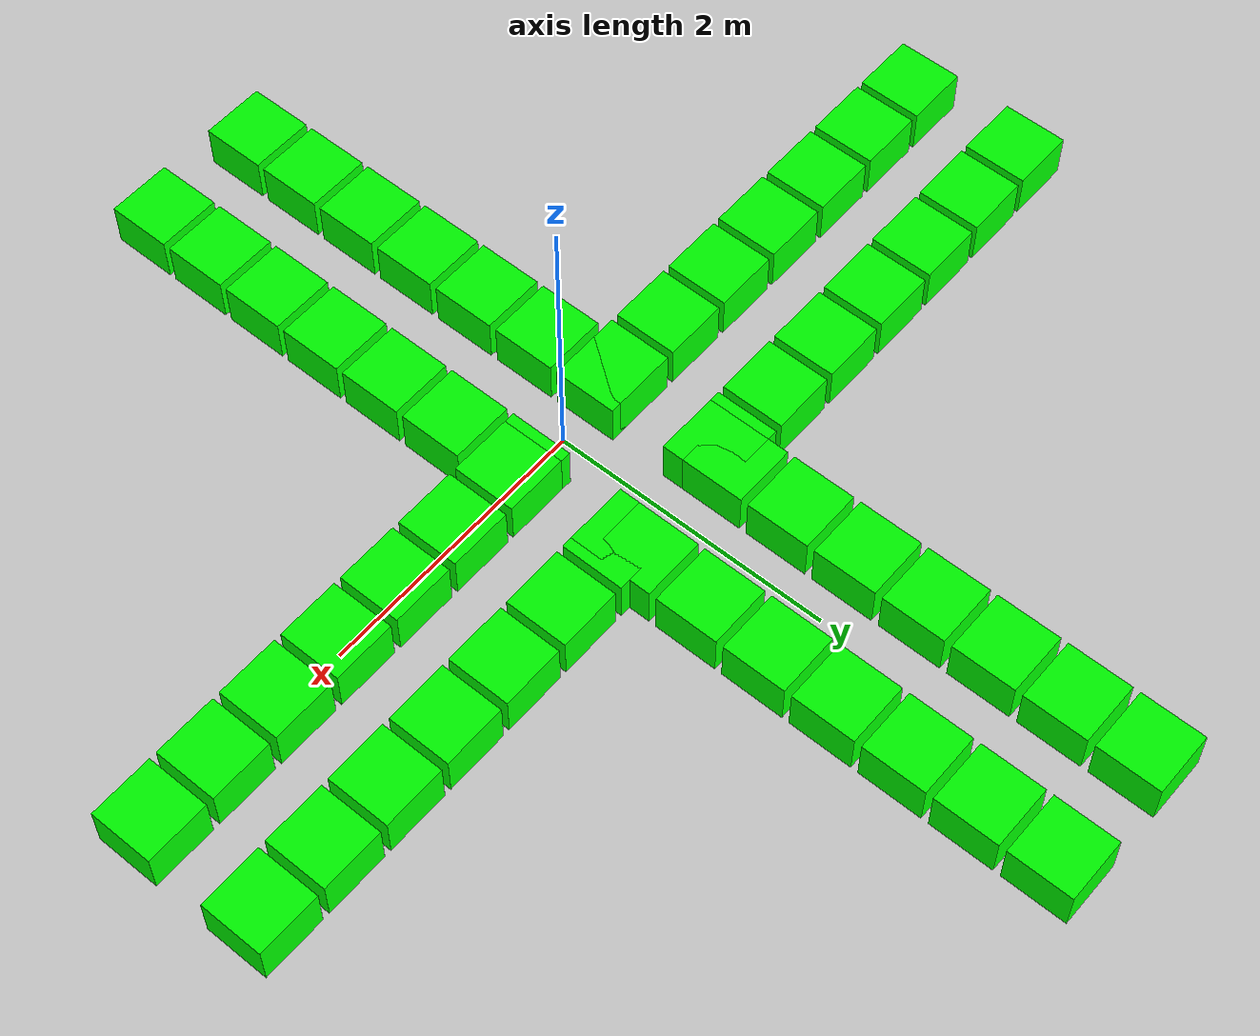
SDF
<?xml version="1.0" ?>

<sdf version="1.6">
  <world name="default">

    <include>
      <uri>model://sun</uri>
    </include>
    <include>
      <uri>model://ground_plane</uri>
    </include>

    <!-- Box Obstacle 1 -->
    <model name="box_obstacle1">
      <static>true</static>
      <pose>1.0 0 0 0 0 0</pose> <!-- Set the pose (position and orientation) of the box -->
      <link name="link">
        <collision name="collision">
          <geometry>
            <box>
              <size>0.45 0.45 0.6</size> <!-- Set the size of the box -->
            </box>
          </geometry>
        </collision>
        <visual name="visual">
          <geometry>
            <box>
              <size>0.45 0.45 0.6</size> <!-- Set the size of the box -->
            </box>
          </geometry>
          <material>
            <ambient>0 1 0 1</ambient> <!-- Set the ambient color to green (RGBA) -->
            <diffuse>0 1 0 1</diffuse> <!-- Set the diffuse color to green (RGBA) -->
            <specular>0.7 0.7 0.7 1</specular> <!-- Set the specular color to light gray (RGBA) -->
            <emissive>0 0 0 1</emissive> <!-- Set the emissive color to black (RGBA) -->
          </material>
        </visual>
      </link>
    </model>

    <!-- Box Obstacle 2 -->
    <model name="box_obstacle2">
      <static>true</static>
      <pose>1.5 0 0 0 0 0</pose> <!-- Set the pose (position and orientation) of the box -->
      <link name="link">
        <collision name="collision">
          <geometry>
            <box>
              <size>0.45 0.45 0.6</size> <!-- Set the size of the box -->
            </box>
          </geometry>
        </collision>
        <visual name="visual">
          <geometry>
            <box>
              <size>0.45 0.45 0.6</size> <!-- Set the size of the box -->
            </box>
          </geometry>
          <material>
            <ambient>0 1 0 1</ambient> <!-- Set the ambient color to green (RGBA) -->
            <diffuse>0 1 0 1</diffuse> <!-- Set the diffuse color to green (RGBA) -->
            <specular>0.7 0.7 0.7 1</specular> <!-- Set the specular color to light gray (RGBA) -->
            <emissive>0 0 0 1</emissive> <!-- Set the emissive color to black (RGBA) -->
          </material>
        </visual>
      </link>
    </model>

    <!-- Box Obstacle 3 -->
    <model name="box_obstacle3">
      <static>true</static>
      <pose>2 0 0 0 0 0</pose> <!-- Set the pose (position and orientation) of the box -->
      <link name="link">
        <collision name="collision">
          <geometry>
            <box>
              <size>0.45 0.45 0.6</size> <!-- Set the size of the box -->
            </box>
          </geometry>
        </collision>
        <visual name="visual">
          <geometry>
            <box>
              <size>0.45 0.45 0.6</size> <!-- Set the size of the box -->
            </box>
          </geometry>
          <material>
            <ambient>0 1 0 1</ambient> <!-- Set the ambient color to green (RGBA) -->
            <diffuse>0 1 0 1</diffuse> <!-- Set the diffuse color to green (RGBA) -->
            <specular>0.7 0.7 0.7 1</specular> <!-- Set the specular color to light gray (RGBA) -->
            <emissive>0 0 0 1</emissive> <!-- Set the emissive color to black (RGBA) -->
          </material>
        </visual>
      </link>
    </model>

    <!-- Box Obstacle 4 -->
    <model name="box_obstacle4">
      <static>true</static>
      <pose>1 0.85 0 0 0 0</pose> <!-- Set the pose (position and orientation) of the box -->
      <link name="link">
        <collision name="collision">
          <geometry>
            <box>
              <size>0.45 0.45 0.6</size> <!-- Set the size of the box -->
            </box>
          </geometry>
        </collision>
        <visual name="visual">
          <geometry>
            <box>
              <size>0.45 0.45 0.6</size> <!-- Set the size of the box -->
            </box>
          </geometry>
          <material>
            <ambient>0 1 0 1</ambient> <!-- Set the ambient color to green (RGBA) -->
            <diffuse>0 1 0 1</diffuse> <!-- Set the diffuse color to green (RGBA) -->
            <specular>0.7 0.7 0.7 1</specular> <!-- Set the specular color to light gray (RGBA) -->
            <emissive>0 0 0 1</emissive> <!-- Set the emissive color to black (RGBA) -->
          </material>
        </visual>
      </link>
    </model>

    <!-- Box Obstacle 5 -->
    <model name="box_obstacle5">
      <static>true</static>
      <pose>1.5 0.85 0 0 0 0</pose> <!-- Set the pose (position and orientation) of the box -->
      <link name="link">
        <collision name="collision">
          <geometry>
            <box>
              <size>0.45 0.45 0.6</size> <!-- Set the size of the box -->
            </box>
          </geometry>
        </collision>
        <visual name="visual">
          <geometry>
            <box>
              <size>0.45 0.45 0.6</size> <!-- Set the size of the box -->
            </box>
          </geometry>
          <material>
            <ambient>0 1 0 1</ambient> <!-- Set the ambient color to green (RGBA) -->
            <diffuse>0 1 0 1</diffuse> <!-- Set the diffuse color to green (RGBA) -->
            <specular>0.7 0.7 0.7 1</specular> <!-- Set the specular color to light gray (RGBA) -->
            <emissive>0 0 0 1</emissive> <!-- Set the emissive color to black (RGBA) -->
          </material>
        </visual>
      </link>
    </model>

    <!-- Box Obstacle 6 -->
    <model name="box_obstacle6">
      <static>true</static>
      <pose>2 0.85 0 0 0 0</pose> <!-- Set the pose (position and orientation) of the box -->
      <link name="link">
        <collision name="collision">
          <geometry>
            <box>
              <size>0.45 0.45 0.6</size> <!-- Set the size of the box -->
            </box>
          </geometry>
        </collision>
        <visual name="visual">
          <geometry>
            <box>
              <size>0.45 0.45 0.6</size> <!-- Set the size of the box -->
            </box>
          </geometry>
          <material>
            <ambient>0 1 0 1</ambient> <!-- Set the ambient color to green (RGBA) -->
            <diffuse>0 1 0 1</diffuse> <!-- Set the diffuse color to green (RGBA) -->
            <specular>0.7 0.7 0.7 1</specular> <!-- Set the specular color to light gray (RGBA) -->
            <emissive>0 0 0 1</emissive> <!-- Set the emissive color to black (RGBA) -->
          </material>
        </visual>
      </link>
    </model>

    <!-- Box Obstacle 7 -->
    <model name="box_obstacle7">
      <static>true</static>
      <pose>-2 0 0 0 0 0</pose> <!-- Set the pose (position and orientation) of the box -->
      <link name="link">
        <collision name="collision">
          <geometry>
            <box>
              <size>0.45 0.45 0.6</size> <!-- Set the size of the box -->
            </box>
          </geometry>
        </collision>
        <visual name="visual">
          <geometry>
            <box>
              <size>0.45 0.45 0.6</size> <!-- Set the size of the box -->
            </box>
          </geometry>
          <material>
            <ambient>0 1 0 1</ambient> <!-- Set the ambient color to green (RGBA) -->
            <diffuse>0 1 0 1</diffuse> <!-- Set the diffuse color to green (RGBA) -->
            <specular>0.7 0.7 0.7 1</specular> <!-- Set the specular color to light gray (RGBA) -->
            <emissive>0 0 0 1</emissive> <!-- Set the emissive color to black (RGBA) -->
          </material>
        </visual>
      </link>
    </model>

    <!-- Box Obstacle 8 -->
    <model name="box_obstacle8">
      <static>true</static>
      <pose>-1.5  0 0 0 0 0</pose> <!-- Set the pose (position and orientation) of the box -->
      <link name="link">
        <collision name="collision">
          <geometry>
            <box>
              <size>0.45 0.45 0.6</size> <!-- Set the size of the box -->
            </box>
          </geometry>
        </collision>
        <visual name="visual">
          <geometry>
            <box>
              <size>0.45 0.45 0.6</size> <!-- Set the size of the box -->
            </box>
          </geometry>
          <material>
            <ambient>0 1 0 1</ambient> <!-- Set the ambient color to green (RGBA) -->
            <diffuse>0 1 0 1</diffuse> <!-- Set the diffuse color to green (RGBA) -->
            <specular>0.7 0.7 0.7 1</specular> <!-- Set the specular color to light gray (RGBA) -->
            <emissive>0 0 0 1</emissive> <!-- Set the emissive color to black (RGBA) -->
          </material>
        </visual>
      </link>
    </model>

    <!-- Box Obstacle 9 -->
    <model name="box_obstacle9">
      <static>true</static>
      <pose>0.425 -0.5 0 0 0 0</pose> <!-- Set the pose (position and orientation) of the box -->
      <link name="link">
        <collision name="collision">
          <geometry>
            <box>
              <size>0.45 0.45 0.6</size> <!-- Set the size of the box -->
            </box>
          </geometry>
        </collision>
        <visual name="visual">
          <geometry>
            <box>
              <size>0.45 0.45 0.6</size> <!-- Set the size of the box -->
            </box>
          </geometry>
          <material>
            <ambient>0 1 0 1</ambient> <!-- Set the ambient color to green (RGBA) -->
            <diffuse>0 1 0 1</diffuse> <!-- Set the diffuse color to green (RGBA) -->
            <specular>0.7 0.7 0.7 1</specular> <!-- Set the specular color to light gray (RGBA) -->
            <emissive>0 0 0 1</emissive> <!-- Set the emissive color to black (RGBA) -->
          </material>
        </visual>
      </link>
    </model>

    <!-- Box Obstacle 10 -->
    <model name="box_obstacle10">
      <static>true</static>
      <pose> 0.425 -1 0 0 0 0</pose> <!-- Set the pose (position and orientation) of the box -->
      <link name="link">
        <collision name="collision">
          <geometry>
            <box>
              <size>0.45 0.45 0.6</size> <!-- Set the size of the box -->
            </box>
          </geometry>
        </collision>
        <visual name="visual">
          <geometry>
            <box>
              <size>0.45 0.45 0.6</size> <!-- Set the size of the box -->
            </box>
          </geometry>
          <material>
            <ambient>0 1 0 1</ambient> <!-- Set the ambient color to green (RGBA) -->
            <diffuse>0 1 0 1</diffuse> <!-- Set the diffuse color to green (RGBA) -->
            <specular>0.7 0.7 0.7 1</specular> <!-- Set the specular color to light gray (RGBA) -->
            <emissive>0 0 0 1</emissive> <!-- Set the emissive color to black (RGBA) -->
          </material>
        </visual>
      </link>
    </model>

    <!-- Box Obstacle 11 -->
    <model name="box_obstacle11">
      <static>true</static>
      <pose> 0.425 -1.5 0 0 0 0</pose> <!-- Set the pose (position and orientation) of the box -->
      <link name="link">
        <collision name="collision">
          <geometry>
            <box>
              <size>0.45 0.45 0.6</size> <!-- Set the size of the box -->
            </box>
          </geometry>
        </collision>
        <visual name="visual">
          <geometry>
            <box>
              <size>0.45 0.45 0.6</size> <!-- Set the size of the box -->
            </box>
          </geometry>
          <material>
            <ambient>0 1 0 1</ambient> <!-- Set the ambient color to green (RGBA) -->
            <diffuse>0 1 0 1</diffuse> <!-- Set the diffuse color to green (RGBA) -->
            <specular>0.7 0.7 0.7 1</specular> <!-- Set the specular color to light gray (RGBA) -->
            <emissive>0 0 0 1</emissive> <!-- Set the emissive color to black (RGBA) -->
          </material>
        </visual>
      </link>
    </model>

    <!-- Box Obstacle 12 -->
    <model name="box_obstacle12">
      <static>true</static>
      <pose> -0.425 -0.5 0 0 0 0</pose> <!-- Set the pose (position and orientation) of the box -->
      <link name="link">
        <collision name="collision">
          <geometry>
            <box>
              <size>0.45 0.45 0.6</size> <!-- Set the size of the box -->
            </box>
          </geometry>
        </collision>
        <visual name="visual">
          <geometry>
            <box>
              <size>0.45 0.45 0.6</size> <!-- Set the size of the box -->
            </box>
          </geometry>
          <material>
            <ambient>0 1 0 1</ambient> <!-- Set the ambient color to green (RGBA) -->
            <diffuse>0 1 0 1</diffuse> <!-- Set the diffuse color to green (RGBA) -->
            <specular>0.7 0.7 0.7 1</specular> <!-- Set the specular color to light gray (RGBA) -->
            <emissive>0 0 0 1</emissive> <!-- Set the emissive color to black (RGBA) -->
          </material>
        </visual>
      </link>
    </model>

    <!-- Box Obstacle 13 -->
    <model name="box_obstacle13">
      <static>true</static>
      <pose> -0.425 -1 0 0 0 0</pose> <!-- Set the pose (position and orientation) of the box -->
      <link name="link">
        <collision name="collision">
          <geometry>
            <box>
              <size>0.45 0.45 0.6</size> <!-- Set the size of the box -->
            </box>
          </geometry>
        </collision>
        <visual name="visual">
          <geometry>
            <box>
              <size>0.45 0.45 0.6</size> <!-- Set the size of the box -->
            </box>
          </geometry>
          <material>
            <ambient>0 1 0 1</ambient> <!-- Set the ambient color to green (RGBA) -->
            <diffuse>0 1 0 1</diffuse> <!-- Set the diffuse color to green (RGBA) -->
            <specular>0.7 0.7 0.7 1</specular> <!-- Set the specular color to light gray (RGBA) -->
            <emissive>0 0 0 1</emissive> <!-- Set the emissive color to black (RGBA) -->
          </material>
        </visual>
      </link>
    </model>

    <!-- Box Obstacle 14 -->
    <model name="box_obstacle14">
      <static>true</static>
      <pose> -0.425 -1.5 0 0 0 0</pose> <!-- Set the pose (position and orientation) of the box -->
      <link name="link">
        <collision name="collision">
          <geometry>
            <box>
              <size>0.45 0.45 0.6</size> <!-- Set the size of the box -->
            </box>
          </geometry>
        </collision>
        <visual name="visual">
          <geometry>
            <box>
              <size>0.45 0.45 0.6</size> <!-- Set the size of the box -->
            </box>
          </geometry>
          <material>
            <ambient>0 1 0 1</ambient> <!-- Set the ambient color to green (RGBA) -->
            <diffuse>0 1 0 1</diffuse> <!-- Set the diffuse color to green (RGBA) -->
            <specular>0.7 0.7 0.7 1</specular> <!-- Set the specular color to light gray (RGBA) -->
            <emissive>0 0 0 1</emissive> <!-- Set the emissive color to black (RGBA) -->
          </material>
        </visual>
      </link>
    </model>

    <!-- Box Obstacle 15 -->
    <model name="box_obstacle15">
      <static>true</static>
      <pose> 0.425 0 0 0 0 0</pose> <!-- Set the pose (position and orientation) of the box -->
      <link name="link">
        <collision name="collision">
          <geometry>
            <box>
              <size>0.45 0.45 0.6</size> <!-- Set the size of the box -->
            </box>
          </geometry>
        </collision>
        <visual name="visual">
          <geometry>
            <box>
              <size>0.45 0.45 0.6</size> <!-- Set the size of the box -->
            </box>
          </geometry>
          <material>
            <ambient>0 1 0 1</ambient> <!-- Set the ambient color to green (RGBA) -->
            <diffuse>0 1 0 1</diffuse> <!-- Set the diffuse color to green (RGBA) -->
            <specular>0.7 0.7 0.7 1</specular> <!-- Set the specular color to light gray (RGBA) -->
            <emissive>0 0 0 1</emissive> <!-- Set the emissive color to black (RGBA) -->
          </material>
        </visual>
      </link>
    </model>

    <!-- Box Obstacle 16 -->
    <model name="box_obstacle16">
      <static>true</static>
      <pose> 0.425 0.85 0 0 0 0</pose> <!-- Set the pose (position and orientation) of the box -->
      <link name="link">
        <collision name="collision">
          <geometry>
            <box>
              <size>0.45 0.45 0.6</size> <!-- Set the size of the box -->
            </box>
          </geometry>
        </collision>
        <visual name="visual">
          <geometry>
            <box>
              <size>0.45 0.45 0.6</size> <!-- Set the size of the box -->
            </box>
          </geometry>
          <material>
            <ambient>0 1 0 1</ambient> <!-- Set the ambient color to green (RGBA) -->
            <diffuse>0 1 0 1</diffuse> <!-- Set the diffuse color to green (RGBA) -->
            <specular>0.7 0.7 0.7 1</specular> <!-- Set the specular color to light gray (RGBA) -->
            <emissive>0 0 0 1</emissive> <!-- Set the emissive color to black (RGBA) -->
          </material>
        </visual>
      </link>
    </model>

    <!-- Box Obstacle 17 -->
    <model name="box_obstacle17">
      <static>true</static>
      <pose> 0.425 1.5 0 0 0 0</pose> <!-- Set the pose (position and orientation) of the box -->
      <link name="link">
        <collision name="collision">
          <geometry>
            <box>
              <size>0.45 0.45 0.6</size> <!-- Set the size of the box -->
            </box>
          </geometry>
        </collision>
        <visual name="visual">
          <geometry>
            <box>
              <size>0.45 0.45 0.6</size> <!-- Set the size of the box -->
            </box>
          </geometry>
          <material>
            <ambient>0 1 0 1</ambient> <!-- Set the ambient color to green (RGBA) -->
            <diffuse>0 1 0 1</diffuse> <!-- Set the diffuse color to green (RGBA) -->
            <specular>0.7 0.7 0.7 1</specular> <!-- Set the specular color to light gray (RGBA) -->
            <emissive>0 0 0 1</emissive> <!-- Set the emissive color to black (RGBA) -->
          </material>
        </visual>
      </link>
    </model>

    <!-- Box Obstacle 18 -->
    <model name="box_obstacle18">
      <static>true</static>
      <pose> -0.425 1.5 0 0 0 0</pose> <!-- Set the pose (position and orientation) of the box -->
      <link name="link">
        <collision name="collision">
          <geometry>
            <box>
              <size>0.45 0.45 0.6</size> <!-- Set the size of the box -->
            </box>
          </geometry>
        </collision>
        <visual name="visual">
          <geometry>
            <box>
              <size>0.45 0.45 0.6</size> <!-- Set the size of the box -->
            </box>
          </geometry>
          <material>
            <ambient>0 1 0 1</ambient> <!-- Set the ambient color to green (RGBA) -->
            <diffuse>0 1 0 1</diffuse> <!-- Set the diffuse color to green (RGBA) -->
            <specular>0.7 0.7 0.7 1</specular> <!-- Set the specular color to light gray (RGBA) -->
            <emissive>0 0 0 1</emissive> <!-- Set the emissive color to black (RGBA) -->
          </material>
        </visual>
      </link>
    </model>

    <!-- Box Obstacle 19 -->
    <model name="box_obstacle19">
      <static>true</static>
      <pose> -0.425 0.85 0 0 0 0</pose> <!-- Set the pose (position and orientation) of the box -->
      <link name="link">
        <collision name="collision">
          <geometry>
            <box>
              <size>0.45 0.45 0.6</size> <!-- Set the size of the box -->
            </box>
          </geometry>
        </collision>
        <visual name="visual">
          <geometry>
            <box>
              <size>0.45 0.45 0.6</size> <!-- Set the size of the box -->
            </box>
          </geometry>
          <material>
            <ambient>0 1 0 1</ambient> <!-- Set the ambient color to green (RGBA) -->
            <diffuse>0 1 0 1</diffuse> <!-- Set the diffuse color to green (RGBA) -->
            <specular>0.7 0.7 0.7 1</specular> <!-- Set the specular color to light gray (RGBA) -->
            <emissive>0 0 0 1</emissive> <!-- Set the emissive color to black (RGBA) -->
          </material>
        </visual>
      </link>
    </model>

    <!-- Box Obstacle 20 -->
    <model name="box_obstacle20">
      <static>true</static>
      <pose> -0.425 0 0 0 0 0</pose> <!-- Set the pose (position and orientation) of the box -->
      <link name="link">
        <collision name="collision">
          <geometry>
            <box>
              <size>0.45 0.45 0.6</size> <!-- Set the size of the box -->
            </box>
          </geometry>
        </collision>
        <visual name="visual">
          <geometry>
            <box>
              <size>0.45 0.45 0.6</size> <!-- Set the size of the box -->
            </box>
          </geometry>
          <material>
            <ambient>0 1 0 1</ambient> <!-- Set the ambient color to green (RGBA) -->
            <diffuse>0 1 0 1</diffuse> <!-- Set the diffuse color to green (RGBA) -->
            <specular>0.7 0.7 0.7 1</specular> <!-- Set the specular color to light gray (RGBA) -->
            <emissive>0 0 0 1</emissive> <!-- Set the emissive color to black (RGBA) -->
          </material>
        </visual>
      </link>
    </model>

    <!-- Box Obstacle 21 -->
    <model name="box_obstacle21">
      <static>true</static>
      <pose>-1 0 0 0 0 0</pose> <!-- Set the pose (position and orientation) of the box -->
      <link name="link">
        <collision name="collision">
          <geometry>
            <box>
              <size>0.45 0.45 0.6</size> <!-- Set the size of the box -->
            </box>
          </geometry>
        </collision>
        <visual name="visual">
          <geometry>
            <box>
              <size>0.45 0.45 0.6</size> <!-- Set the size of the box -->
            </box>
          </geometry>
          <material>
            <ambient>0 1 0 1</ambient> <!-- Set the ambient color to green (RGBA) -->
            <diffuse>0 1 0 1</diffuse> <!-- Set the diffuse color to green (RGBA) -->
            <specular>0.7 0.7 0.7 1</specular> <!-- Set the specular color to light gray (RGBA) -->
            <emissive>0 0 0 1</emissive> <!-- Set the emissive color to black (RGBA) -->
          </material>
        </visual>
      </link>
    </model>

    <!-- Box Obstacle 22 -->
    <model name="box_obstacle22">
      <static>true</static>
      <pose> 0.425 2.0 0 0 0 0</pose> <!-- Set the pose (position and orientation) of the box -->
      <link name="link">
        <collision name="collision">
          <geometry>
            <box>
              <size>0.45 0.45 0.6</size> <!-- Set the size of the box -->
            </box>
          </geometry>
        </collision>
        <visual name="visual">
          <geometry>
            <box>
              <size>0.45 0.45 0.6</size> <!-- Set the size of the box -->
            </box>
          </geometry>
          <material>
            <ambient>0 1 0 1</ambient> <!-- Set the ambient color to green (RGBA) -->
            <diffuse>0 1 0 1</diffuse> <!-- Set the diffuse color to green (RGBA) -->
            <specular>0.7 0.7 0.7 1</specular> <!-- Set the specular color to light gray (RGBA) -->
            <emissive>0 0 0 1</emissive> <!-- Set the emissive color to black (RGBA) -->
          </material>
        </visual>
      </link>
    </model>

   <!-- Box Obstacle 23 -->
    <model name="box_obstacle23">
      <static>true</static>
      <pose> -0.425 2.0 0 0 0 0</pose> <!-- Set the pose (position and orientation) of the box -->
      <link name="link">
        <collision name="collision">
          <geometry>
            <box>
              <size>0.45 0.45 0.6</size> <!-- Set the size of the box -->
            </box>
          </geometry>
        </collision>
        <visual name="visual">
          <geometry>
            <box>
              <size>0.45 0.45 0.6</size> <!-- Set the size of the box -->
            </box>
          </geometry>
          <material>
            <ambient>0 1 0 1</ambient> <!-- Set the ambient color to green (RGBA) -->
            <diffuse>0 1 0 1</diffuse> <!-- Set the diffuse color to green (RGBA) -->
            <specular>0.7 0.7 0.7 1</specular> <!-- Set the specular color to light gray (RGBA) -->
            <emissive>0 0 0 1</emissive> <!-- Set the emissive color to black (RGBA) -->
          </material>
        </visual>
      </link>
    </model>

       <!-- Box Obstacle 24 -->
    <model name="box_obstacle24">
      <static>true</static>
      <pose>-1.0 0.85 0 0 0 0</pose> <!-- Set the pose (position and orientation) of the box -->
      <link name="link">
        <collision name="collision">
          <geometry>
            <box>
              <size>0.45 0.45 0.6</size> <!-- Set the size of the box -->
            </box>
          </geometry>
        </collision>
        <visual name="visual">
          <geometry>
            <box>
              <size>0.45 0.45 0.6</size> <!-- Set the size of the box -->
            </box>
          </geometry>
          <material>
            <ambient>0 1 0 1</ambient> <!-- Set the ambient color to green (RGBA) -->
            <diffuse>0 1 0 1</diffuse> <!-- Set the diffuse color to green (RGBA) -->
            <specular>0.7 0.7 0.7 1</specular> <!-- Set the specular color to light gray (RGBA) -->
            <emissive>0 0 0 1</emissive> <!-- Set the emissive color to black (RGBA) -->
          </material>
        </visual>
      </link>
    </model>

   <!-- Box Obstacle 25 -->
    <model name="box_obstacle25">
      <static>true</static>
      <pose>-1.5 0.85 0 0 0 0</pose> <!-- Set the pose (position and orientation) of the box -->
      <link name="link">
        <collision name="collision">
          <geometry>
            <box>
              <size>0.45 0.45 0.6</size> <!-- Set the size of the box -->
            </box>
          </geometry>
        </collision>
        <visual name="visual">
          <geometry>
            <box>
              <size>0.45 0.45 0.6</size> <!-- Set the size of the box -->
            </box>
          </geometry>
          <material>
            <ambient>0 1 0 1</ambient> <!-- Set the ambient color to green (RGBA) -->
            <diffuse>0 1 0 1</diffuse> <!-- Set the diffuse color to green (RGBA) -->
            <specular>0.7 0.7 0.7 1</specular> <!-- Set the specular color to light gray (RGBA) -->
            <emissive>0 0 0 1</emissive> <!-- Set the emissive color to black (RGBA) -->
          </material>
        </visual>
      </link>
    </model>

       <!-- Box Obstacle 26 -->
    <model name="box_obstacle26">
      <static>true</static>
      <pose>-2.0 0.85 0 0 0 0</pose> <!-- Set the pose (position and orientation) of the box -->
      <link name="link">
        <collision name="collision">
          <geometry>
            <box>
              <size>0.45 0.45 0.6</size> <!-- Set the size of the box -->
            </box>
          </geometry>
        </collision>
        <visual name="visual">
          <geometry>
            <box>
              <size>0.45 0.45 0.6</size> <!-- Set the size of the box -->
            </box>
          </geometry>
          <material>
            <ambient>0 1 0 1</ambient> <!-- Set the ambient color to green (RGBA) -->
            <diffuse>0 1 0 1</diffuse> <!-- Set the diffuse color to green (RGBA) -->
            <specular>0.7 0.7 0.7 1</specular> <!-- Set the specular color to light gray (RGBA) -->
            <emissive>0 0 0 1</emissive> <!-- Set the emissive color to black (RGBA) -->
          </material>
        </visual>
      </link>
    </model>

       <!-- Box Obstacle 28 -->
    <model name="box_obstacle28">
      <static>true</static>
      <pose> -0.425 2.5 0 0 0 0 0</pose> <!-- Set the pose (position and orientation) of the box -->
      <link name="link">
        <collision name="collision">
          <geometry>
            <box>
              <size>0.45 0.45 0.6</size> <!-- Set the size of the box -->
            </box>
          </geometry>
        </collision>
        <visual name="visual">
          <geometry>
            <box>
              <size>0.45 0.45 0.6</size> <!-- Set the size of the box -->
            </box>
          </geometry>
          <material>
            <ambient>0 1 0 1</ambient> <!-- Set the ambient color to green (RGBA) -->
            <diffuse>0 1 0 1</diffuse> <!-- Set the diffuse color to green (RGBA) -->
            <specular>0.7 0.7 0.7 1</specular> <!-- Set the specular color to light gray (RGBA) -->
            <emissive>0 0 0 1</emissive> <!-- Set the emissive color to black (RGBA) -->
          </material>
        </visual>
      </link>
    </model>

       <!-- Box Obstacle 29 -->
    <model name="box_obstacle29">
      <static>true</static>
      <pose> 0.425 2.5 0 0 0 0</pose> <!-- Set the pose (position and orientation) of the box -->
      <link name="link">
        <collision name="collision">
          <geometry>
            <box>
              <size>0.45 0.45 0.6</size> <!-- Set the size of the box -->
            </box>
          </geometry>
        </collision>
        <visual name="visual">
          <geometry>
            <box>
              <size>0.45 0.45 0.6</size> <!-- Set the size of the box -->
            </box>
          </geometry>
          <material>
            <ambient>0 1 0 1</ambient> <!-- Set the ambient color to green (RGBA) -->
            <diffuse>0 1 0 1</diffuse> <!-- Set the diffuse color to green (RGBA) -->
            <specular>0.7 0.7 0.7 1</specular> <!-- Set the specular color to light gray (RGBA) -->
            <emissive>0 0 0 1</emissive> <!-- Set the emissive color to black (RGBA) -->
          </material>
        </visual>
      </link>
    </model>

           <!-- Box Obstacle 30-->
    <model name="box_obstacle30">
      <static>true</static>
      <pose>-2.5 0.85 0 0 0 0</pose> <!-- Set the pose (position and orientation) of the box -->
      <link name="link">
        <collision name="collision">
          <geometry>
            <box>
              <size>0.45 0.45 0.6</size> <!-- Set the size of the box -->
            </box>
          </geometry>
        </collision>
        <visual name="visual">
          <geometry>
            <box>
              <size>0.45 0.45 0.6</size> <!-- Set the size of the box -->
            </box>
          </geometry>
          <material>
            <ambient>0 1 0 1</ambient> <!-- Set the ambient color to green (RGBA) -->
            <diffuse>0 1 0 1</diffuse> <!-- Set the diffuse color to green (RGBA) -->
            <specular>0.7 0.7 0.7 1</specular> <!-- Set the specular color to light gray (RGBA) -->
            <emissive>0 0 0 1</emissive> <!-- Set the emissive color to black (RGBA) -->
          </material>
        </visual>
      </link>
    </model>

           <!-- Box Obstacle 31 -->
    <model name="box_obstacle31">
      <static>true</static>
      <pose>-3 0.85 0 0 0 0</pose> <!-- Set the pose (position and orientation) of the box -->
      <link name="link">
        <collision name="collision">
          <geometry>
            <box>
              <size>0.45 0.45 0.6</size> <!-- Set the size of the box -->
            </box>
          </geometry>
        </collision>
        <visual name="visual">
          <geometry>
            <box>
              <size>0.45 0.45 0.6</size> <!-- Set the size of the box -->
            </box>
          </geometry>
          <material>
            <ambient>0 1 0 1</ambient> <!-- Set the ambient color to green (RGBA) -->
            <diffuse>0 1 0 1</diffuse> <!-- Set the diffuse color to green (RGBA) -->
            <specular>0.7 0.7 0.7 1</specular> <!-- Set the specular color to light gray (RGBA) -->
            <emissive>0 0 0 1</emissive> <!-- Set the emissive color to black (RGBA) -->
          </material>
        </visual>
      </link>
    </model>

           <!-- Box Obstacle 32 -->
    <model name="box_obstacle32">
      <static>true</static>
      <pose>-3.5 0.85 0 0 0 0</pose> <!-- Set the pose (position and orientation) of the box -->
      <link name="link">
        <collision name="collision">
          <geometry>
            <box>
              <size>0.45 0.45 0.6</size> <!-- Set the size of the box -->
            </box>
          </geometry>
        </collision>
        <visual name="visual">
          <geometry>
            <box>
              <size>0.45 0.45 0.6</size> <!-- Set the size of the box -->
            </box>
          </geometry>
          <material>
            <ambient>0 1 0 1</ambient> <!-- Set the ambient color to green (RGBA) -->
            <diffuse>0 1 0 1</diffuse> <!-- Set the diffuse color to green (RGBA) -->
            <specular>0.7 0.7 0.7 1</specular> <!-- Set the specular color to light gray (RGBA) -->
            <emissive>0 0 0 1</emissive> <!-- Set the emissive color to black (RGBA) -->
          </material>
        </visual>
      </link>
    </model>

               <!-- Box Obstacle 33-->
    <model name="box_obstacle33">
      <static>true</static>
      <pose>-2.5 0 0 0 0 0</pose> <!-- Set the pose (position and orientation) of the box -->
      <link name="link">
        <collision name="collision">
          <geometry>
            <box>
              <size>0.45 0.45 0.6</size> <!-- Set the size of the box -->
            </box>
          </geometry>
        </collision>
        <visual name="visual">
          <geometry>
            <box>
              <size>0.45 0.45 0.6</size> <!-- Set the size of the box -->
            </box>
          </geometry>
          <material>
            <ambient>0 1 0 1</ambient> <!-- Set the ambient color to green (RGBA) -->
            <diffuse>0 1 0 1</diffuse> <!-- Set the diffuse color to green (RGBA) -->
            <specular>0.7 0.7 0.7 1</specular> <!-- Set the specular color to light gray (RGBA) -->
            <emissive>0 0 0 1</emissive> <!-- Set the emissive color to black (RGBA) -->
          </material>
        </visual>
      </link>
    </model>

           <!-- Box Obstacle 34 -->
    <model name="box_obstacle34">
      <static>true</static>
      <pose>-3 0 0 0 0 0</pose> <!-- Set the pose (position and orientation) of the box -->
      <link name="link">
        <collision name="collision">
          <geometry>
            <box>
              <size>0.45 0.45 0.6</size> <!-- Set the size of the box -->
            </box>
          </geometry>
        </collision>
        <visual name="visual">
          <geometry>
            <box>
              <size>0.45 0.45 0.6</size> <!-- Set the size of the box -->
            </box>
          </geometry>
          <material>
            <ambient>0 1 0 1</ambient> <!-- Set the ambient color to green (RGBA) -->
            <diffuse>0 1 0 1</diffuse> <!-- Set the diffuse color to green (RGBA) -->
            <specular>0.7 0.7 0.7 1</specular> <!-- Set the specular color to light gray (RGBA) -->
            <emissive>0 0 0 1</emissive> <!-- Set the emissive color to black (RGBA) -->
          </material>
        </visual>
      </link>
    </model>

           <!-- Box Obstacle 35 -->
    <model name="box_obstacle35">
      <static>true</static>
      <pose>-3.5 0 0 0 0 0</pose> <!-- Set the pose (position and orientation) of the box -->
      <link name="link">
        <collision name="collision">
          <geometry>
            <box>
              <size>0.45 0.45 0.6</size> <!-- Set the size of the box -->
            </box>
          </geometry>
        </collision>
        <visual name="visual">
          <geometry>
            <box>
              <size>0.45 0.45 0.6</size> <!-- Set the size of the box -->
            </box>
          </geometry>
          <material>
            <ambient>0 1 0 1</ambient> <!-- Set the ambient color to green (RGBA) -->
            <diffuse>0 1 0 1</diffuse> <!-- Set the diffuse color to green (RGBA) -->
            <specular>0.7 0.7 0.7 1</specular> <!-- Set the specular color to light gray (RGBA) -->
            <emissive>0 0 0 1</emissive> <!-- Set the emissive color to black (RGBA) -->
          </material>
        </visual>
      </link>
    </model>

               <!-- Box Obstacle 36-->
    <model name="box_obstacle36">
      <static>true</static>
      <pose> 0.425 3 0 0 0 0</pose> <!-- Set the pose (position and orientation) of the box -->
      <link name="link">
        <collision name="collision">
          <geometry>
            <box>
              <size>0.45 0.45 0.6</size> <!-- Set the size of the box -->
            </box>
          </geometry>
        </collision>
        <visual name="visual">
          <geometry>
            <box>
              <size>0.45 0.45 0.6</size> <!-- Set the size of the box -->
            </box>
          </geometry>
          <material>
            <ambient>0 1 0 1</ambient> <!-- Set the ambient color to green (RGBA) -->
            <diffuse>0 1 0 1</diffuse> <!-- Set the diffuse color to green (RGBA) -->
            <specular>0.7 0.7 0.7 1</specular> <!-- Set the specular color to light gray (RGBA) -->
            <emissive>0 0 0 1</emissive> <!-- Set the emissive color to black (RGBA) -->
          </material>
        </visual>
      </link>
    </model>

    <!-- Box Obstacle 37 -->
    <model name="box_obstacle37">
      <static>true</static>
      <pose> 0.425 3.5 0 0 0 0</pose> <!-- Set the pose (position and orientation) of the box -->
      <link name="link">
        <collision name="collision">
          <geometry>
            <box>
              <size>0.45 0.45 0.6</size> <!-- Set the size of the box -->
            </box>
          </geometry>
        </collision>
        <visual name="visual">
          <geometry>
            <box>
              <size>0.45 0.45 0.6</size> <!-- Set the size of the box -->
            </box>
          </geometry>
          <material>
            <ambient>0 1 0 1</ambient> <!-- Set the ambient color to green (RGBA) -->
            <diffuse>0 1 0 1</diffuse> <!-- Set the diffuse color to green (RGBA) -->
            <specular>0.7 0.7 0.7 1</specular> <!-- Set the specular color to light gray (RGBA) -->
            <emissive>0 0 0 1</emissive> <!-- Set the emissive color to black (RGBA) -->
          </material>
        </visual>
      </link>
    </model>

    <!-- Box Obstacle 38 -->
    <model name="box_obstacle38">
      <static>true</static>
      <pose> 0.425 4 0 0 0 0</pose> <!-- Set the pose (position and orientation) of the box -->
      <link name="link">
        <collision name="collision">
          <geometry>
            <box>
              <size>0.45 0.45 0.6</size> <!-- Set the size of the box -->
            </box>
          </geometry>
        </collision>
        <visual name="visual">
          <geometry>
            <box>
              <size>0.45 0.45 0.6</size> <!-- Set the size of the box -->
            </box>
          </geometry>
          <material>
            <ambient>0 1 0 1</ambient> <!-- Set the ambient color to green (RGBA) -->
            <diffuse>0 1 0 1</diffuse> <!-- Set the diffuse color to green (RGBA) -->
            <specular>0.7 0.7 0.7 1</specular> <!-- Set the specular color to light gray (RGBA) -->
            <emissive>0 0 0 1</emissive> <!-- Set the emissive color to black (RGBA) -->
          </material>
        </visual>
      </link>
    </model>

    <!-- Box Obstacle 39-->
    <model name="box_obstacle39">
      <static>true</static>
      <pose> -0.425 3 0 0 0 0</pose> <!-- Set the pose (position and orientation) of the box -->
      <link name="link">
        <collision name="collision">
          <geometry>
            <box>
              <size>0.45 0.45 0.6</size> <!-- Set the size of the box -->
            </box>
          </geometry>
        </collision>
        <visual name="visual">
          <geometry>
            <box>
              <size>0.45 0.45 0.6</size> <!-- Set the size of the box -->
            </box>
          </geometry>
          <material>
            <ambient>0 1 0 1</ambient> <!-- Set the ambient color to green (RGBA) -->
            <diffuse>0 1 0 1</diffuse> <!-- Set the diffuse color to green (RGBA) -->
            <specular>0.7 0.7 0.7 1</specular> <!-- Set the specular color to light gray (RGBA) -->
            <emissive>0 0 0 1</emissive> <!-- Set the emissive color to black (RGBA) -->
          </material>
        </visual>
      </link>
    </model>

    <!-- Box Obstacle 40 -->
    <model name="box_obstacle40">
      <static>true</static>
      <pose> -0.425 3.5 0 0 0 0</pose> <!-- Set the pose (position and orientation) of the box -->
      <link name="link">
        <collision name="collision">
          <geometry>
            <box>
              <size>0.45 0.45 0.6</size> <!-- Set the size of the box -->
            </box>
          </geometry>
        </collision>
        <visual name="visual">
          <geometry>
            <box>
              <size>0.45 0.45 0.6</size> <!-- Set the size of the box -->
            </box>
          </geometry>
          <material>
            <ambient>0 1 0 1</ambient> <!-- Set the ambient color to green (RGBA) -->
            <diffuse>0 1 0 1</diffuse> <!-- Set the diffuse color to green (RGBA) -->
            <specular>0.7 0.7 0.7 1</specular> <!-- Set the specular color to light gray (RGBA) -->
            <emissive>0 0 0 1</emissive> <!-- Set the emissive color to black (RGBA) -->
          </material>
        </visual>
      </link>
    </model>

           <!-- Box Obstacle 41 -->
    <model name="box_obstacle41">
      <static>true</static>
      <pose> -0.425 4 0 0 0 0</pose> <!-- Set the pose (position and orientation) of the box -->
      <link name="link">
        <collision name="collision">
          <geometry>
            <box>
              <size>0.45 0.45 0.6</size> <!-- Set the size of the box -->
            </box>
          </geometry>
        </collision>
        <visual name="visual">
          <geometry>
            <box>
              <size>0.45 0.45 0.6</size> <!-- Set the size of the box -->
            </box>
          </geometry>
          <material>
            <ambient>0 1 0 1</ambient> <!-- Set the ambient color to green (RGBA) -->
            <diffuse>0 1 0 1</diffuse> <!-- Set the diffuse color to green (RGBA) -->
            <specular>0.7 0.7 0.7 1</specular> <!-- Set the specular color to light gray (RGBA) -->
            <emissive>0 0 0 1</emissive> <!-- Set the emissive color to black (RGBA) -->
          </material>
        </visual>
      </link>
    </model>

               <!-- Box Obstacle 42-->
    <model name="box_obstacle42">
      <static>true</static>
      <pose>2.5 0 0 0 0 0</pose> <!-- Set the pose (position and orientation) of the box -->
      <link name="link">
        <collision name="collision">
          <geometry>
            <box>
              <size>0.45 0.45 0.6</size> <!-- Set the size of the box -->
            </box>
          </geometry>
        </collision>
        <visual name="visual">
          <geometry>
            <box>
              <size>0.45 0.45 0.6</size> <!-- Set the size of the box -->
            </box>
          </geometry>
          <material>
            <ambient>0 1 0 1</ambient> <!-- Set the ambient color to green (RGBA) -->
            <diffuse>0 1 0 1</diffuse> <!-- Set the diffuse color to green (RGBA) -->
            <specular>0.7 0.7 0.7 1</specular> <!-- Set the specular color to light gray (RGBA) -->
            <emissive>0 0 0 1</emissive> <!-- Set the emissive color to black (RGBA) -->
          </material>
        </visual>
      </link>
    </model>

           <!-- Box Obstacle 43 -->
    <model name="box_obstacle43">
      <static>true</static>
      <pose>3.0 0 0 0 0 0</pose> <!-- Set the pose (position and orientation) of the box -->
      <link name="link">
        <collision name="collision">
          <geometry>
            <box>
              <size>0.45 0.45 0.6</size> <!-- Set the size of the box -->
            </box>
          </geometry>
        </collision>
        <visual name="visual">
          <geometry>
            <box>
              <size>0.45 0.45 0.6</size> <!-- Set the size of the box -->
            </box>
          </geometry>
          <material>
            <ambient>0 1 0 1</ambient> <!-- Set the ambient color to green (RGBA) -->
            <diffuse>0 1 0 1</diffuse> <!-- Set the diffuse color to green (RGBA) -->
            <specular>0.7 0.7 0.7 1</specular> <!-- Set the specular color to light gray (RGBA) -->
            <emissive>0 0 0 1</emissive> <!-- Set the emissive color to black (RGBA) -->
          </material>
        </visual>
      </link>
    </model>

           <!-- Box Obstacle 44 -->
    <model name="box_obstacle44">
      <static>true</static>
      <pose>3.5 0 0 0 0 0</pose> <!-- Set the pose (position and orientation) of the box -->
      <link name="link">
        <collision name="collision">
          <geometry>
            <box>
              <size>0.45 0.45 0.6</size> <!-- Set the size of the box -->
            </box>
          </geometry>
        </collision>
        <visual name="visual">
          <geometry>
            <box>
              <size>0.45 0.45 0.6</size> <!-- Set the size of the box -->
            </box>
          </geometry>
          <material>
            <ambient>0 1 0 1</ambient> <!-- Set the ambient color to green (RGBA) -->
            <diffuse>0 1 0 1</diffuse> <!-- Set the diffuse color to green (RGBA) -->
            <specular>0.7 0.7 0.7 1</specular> <!-- Set the specular color to light gray (RGBA) -->
            <emissive>0 0 0 1</emissive> <!-- Set the emissive color to black (RGBA) -->
          </material>
        </visual>
      </link>
    </model>

    <!-- Box Obstacle 45-->
    <model name="box_obstacle45">
      <static>true</static>
      <pose>2.5 0.85 0 0 0 0</pose> <!-- Set the pose (position and orientation) of the box -->
      <link name="link">
        <collision name="collision">
          <geometry>
            <box>
              <size>0.45 0.45 0.6</size> <!-- Set the size of the box -->
            </box>
          </geometry>
        </collision>
        <visual name="visual">
          <geometry>
            <box>
              <size>0.45 0.45 0.6</size> <!-- Set the size of the box -->
            </box>
          </geometry>
          <material>
            <ambient>0 1 0 1</ambient> <!-- Set the ambient color to green (RGBA) -->
            <diffuse>0 1 0 1</diffuse> <!-- Set the diffuse color to green (RGBA) -->
            <specular>0.7 0.7 0.7 1</specular> <!-- Set the specular color to light gray (RGBA) -->
            <emissive>0 0 0 1</emissive> <!-- Set the emissive color to black (RGBA) -->
          </material>
        </visual>
      </link>
    </model>

           <!-- Box Obstacle 46 -->
    <model name="box_obstacle46">
      <static>true</static>
      <pose>3 0.85 0 0 0 0</pose> <!-- Set the pose (position and orientation) of the box -->
      <link name="link">
        <collision name="collision">
          <geometry>
            <box>
              <size>0.45 0.45 0.6</size> <!-- Set the size of the box -->
            </box>
          </geometry>
        </collision>
        <visual name="visual">
          <geometry>
            <box>
              <size>0.45 0.45 0.6</size> <!-- Set the size of the box -->
            </box>
          </geometry>
          <material>
            <ambient>0 1 0 1</ambient> <!-- Set the ambient color to green (RGBA) -->
            <diffuse>0 1 0 1</diffuse> <!-- Set the diffuse color to green (RGBA) -->
            <specular>0.7 0.7 0.7 1</specular> <!-- Set the specular color to light gray (RGBA) -->
            <emissive>0 0 0 1</emissive> <!-- Set the emissive color to black (RGBA) -->
          </material>
        </visual>
      </link>
    </model>

    <!-- Box Obstacle 47 -->
    <model name="box_obstacle47">
      <static>true</static>
      <pose>3.5 0.85 0 0 0 0</pose> <!-- Set the pose (position and orientation) of the box -->
      <link name="link">
        <collision name="collision">
          <geometry>
            <box>
              <size>0.45 0.45 0.6</size> <!-- Set the size of the box -->
            </box>
          </geometry>
        </collision>
        <visual name="visual">
          <geometry>
            <box>
              <size>0.45 0.45 0.6</size> <!-- Set the size of the box -->
            </box>
          </geometry>
          <material>
            <ambient>0 1 0 1</ambient> <!-- Set the ambient color to green (RGBA) -->
            <diffuse>0 1 0 1</diffuse> <!-- Set the diffuse color to green (RGBA) -->
            <specular>0.7 0.7 0.7 1</specular> <!-- Set the specular color to light gray (RGBA) -->
            <emissive>0 0 0 1</emissive> <!-- Set the emissive color to black (RGBA) -->
          </material>
        </visual>
      </link>
    </model>

    <!-- Box Obstacle 48-->
    <model name="box_obstacle48">
      <static>true</static>
      <pose>-2.5 0 0 0 0 0</pose> <!-- Set the pose (position and orientation) of the box -->
      <link name="link">
        <collision name="collision">
          <geometry>
            <box>
              <size>0.45 0.45 0.6</size> <!-- Set the size of the box -->
            </box>
          </geometry>
        </collision>
        <visual name="visual">
          <geometry>
            <box>
              <size>0.45 0.45 0.6</size> <!-- Set the size of the box -->
            </box>
          </geometry>
          <material>
            <ambient>0 1 0 1</ambient> <!-- Set the ambient color to green (RGBA) -->
            <diffuse>0 1 0 1</diffuse> <!-- Set the diffuse color to green (RGBA) -->
            <specular>0.7 0.7 0.7 1</specular> <!-- Set the specular color to light gray (RGBA) -->
            <emissive>0 0 0 1</emissive> <!-- Set the emissive color to black (RGBA) -->
          </material>
        </visual>
      </link>
    </model>

           <!-- Box Obstacle 49 -->
    <model name="box_obstacle49">
      <static>true</static>
      <pose>-3 0 0 0 0 0</pose> <!-- Set the pose (position and orientation) of the box -->
      <link name="link">
        <collision name="collision">
          <geometry>
            <box>
              <size>0.45 0.45 0.6</size> <!-- Set the size of the box -->
            </box>
          </geometry>
        </collision>
        <visual name="visual">
          <geometry>
            <box>
              <size>0.45 0.45 0.6</size> <!-- Set the size of the box -->
            </box>
          </geometry>
          <material>
            <ambient>0 1 0 1</ambient> <!-- Set the ambient color to green (RGBA) -->
            <diffuse>0 1 0 1</diffuse> <!-- Set the diffuse color to green (RGBA) -->
            <specular>0.7 0.7 0.7 1</specular> <!-- Set the specular color to light gray (RGBA) -->
            <emissive>0 0 0 1</emissive> <!-- Set the emissive color to black (RGBA) -->
          </material>
        </visual>
      </link>
    </model>

           <!-- Box Obstacle 50 -->
    <model name="box_obstacle50">
      <static>true</static>
      <pose>-3.5 0 0 0 0 0</pose> <!-- Set the pose (position and orientation) of the box -->
      <link name="link">
        <collision name="collision">
          <geometry>
            <box>
              <size>0.45 0.45 0.6</size> <!-- Set the size of the box -->
            </box>
          </geometry>
        </collision>
        <visual name="visual">
          <geometry>
            <box>
              <size>0.45 0.45 0.6</size> <!-- Set the size of the box -->
            </box>
          </geometry>
          <material>
            <ambient>0 1 0 1</ambient> <!-- Set the ambient color to green (RGBA) -->
            <diffuse>0 1 0 1</diffuse> <!-- Set the diffuse color to green (RGBA) -->
            <specular>0.7 0.7 0.7 1</specular> <!-- Set the specular color to light gray (RGBA) -->
            <emissive>0 0 0 1</emissive> <!-- Set the emissive color to black (RGBA) -->
          </material>
        </visual>
      </link>
    </model>

    <!-- Box Obstacle 51-->
    <model name="box_obstacle51">
      <static>true</static>
      <pose> 0.425 -2.0 0 0 0 0</pose> <!-- Set the pose (position and orientation) of the box -->
      <link name="link">
        <collision name="collision">
          <geometry>
            <box>
              <size>0.45 0.45 0.6</size> <!-- Set the size of the box -->
            </box>
          </geometry>
        </collision>
        <visual name="visual">
          <geometry>
            <box>
              <size>0.45 0.45 0.6</size> <!-- Set the size of the box -->
            </box>
          </geometry>
          <material>
            <ambient>0 1 0 1</ambient> <!-- Set the ambient color to green (RGBA) -->
            <diffuse>0 1 0 1</diffuse> <!-- Set the diffuse color to green (RGBA) -->
            <specular>0.7 0.7 0.7 1</specular> <!-- Set the specular color to light gray (RGBA) -->
            <emissive>0 0 0 1</emissive> <!-- Set the emissive color to black (RGBA) -->
          </material>
        </visual>
      </link>
    </model>

           <!-- Box Obstacle 52 -->
    <model name="box_obstacle52">
      <static>true</static>
      <pose> 0.425 -2.5 0 0 0 0</pose> <!-- Set the pose (position and orientation) of the box -->
      <link name="link">
        <collision name="collision">
          <geometry>
            <box>
              <size>0.45 0.45 0.6</size> <!-- Set the size of the box -->
            </box>
          </geometry>
        </collision>
        <visual name="visual">
          <geometry>
            <box>
              <size>0.45 0.45 0.6</size> <!-- Set the size of the box -->
            </box>
          </geometry>
          <material>
            <ambient>0 1 0 1</ambient> <!-- Set the ambient color to green (RGBA) -->
            <diffuse>0 1 0 1</diffuse> <!-- Set the diffuse color to green (RGBA) -->
            <specular>0.7 0.7 0.7 1</specular> <!-- Set the specular color to light gray (RGBA) -->
            <emissive>0 0 0 1</emissive> <!-- Set the emissive color to black (RGBA) -->
          </material>
        </visual>
      </link>
    </model>

    <!-- Box Obstacle 53 -->
    <model name="box_obstacle53">
      <static>true</static>
      <pose> 0.425 -3 0 0 0 0</pose> <!-- Set the pose (position and orientation) of the box -->
      <link name="link">
        <collision name="collision">
          <geometry>
            <box>
              <size>0.45 0.45 0.6</size> <!-- Set the size of the box -->
            </box>
          </geometry>
        </collision>
        <visual name="visual">
          <geometry>
            <box>
              <size>0.45 0.45 0.6</size> <!-- Set the size of the box -->
            </box>
          </geometry>
          <material>
            <ambient>0 1 0 1</ambient> <!-- Set the ambient color to green (RGBA) -->
            <diffuse>0 1 0 1</diffuse> <!-- Set the diffuse color to green (RGBA) -->
            <specular>0.7 0.7 0.7 1</specular> <!-- Set the specular color to light gray (RGBA) -->
            <emissive>0 0 0 1</emissive> <!-- Set the emissive color to black (RGBA) -->
          </material>
        </visual>
      </link>
    </model>

    <!-- Box Obstacle 54-->
    <model name="box_obstacle54">
      <static>true</static>
      <pose> -0.425 -2.0 0 0 0 0</pose> <!-- Set the pose (position and orientation) of the box -->
      <link name="link">
        <collision name="collision">
          <geometry>
            <box>
              <size>0.45 0.45 0.6</size> <!-- Set the size of the box -->
            </box>
          </geometry>
        </collision>
        <visual name="visual">
          <geometry>
            <box>
              <size>0.45 0.45 0.6</size> <!-- Set the size of the box -->
            </box>
          </geometry>
          <material>
            <ambient>0 1 0 1</ambient> <!-- Set the ambient color to green (RGBA) -->
            <diffuse>0 1 0 1</diffuse> <!-- Set the diffuse color to green (RGBA) -->
            <specular>0.7 0.7 0.7 1</specular> <!-- Set the specular color to light gray (RGBA) -->
            <emissive>0 0 0 1</emissive> <!-- Set the emissive color to black (RGBA) -->
          </material>
        </visual>
      </link>
    </model>

           <!-- Box Obstacle 55 -->
    <model name="box_obstacle55">
      <static>true</static>
      <pose> -0.425 -2.5 0 0 0 0</pose> <!-- Set the pose (position and orientation) of the box -->
      <link name="link">
        <collision name="collision">
          <geometry>
            <box>
              <size>0.45 0.45 0.6</size> <!-- Set the size of the box -->
            </box>
          </geometry>
        </collision>
        <visual name="visual">
          <geometry>
            <box>
              <size>0.45 0.45 0.6</size> <!-- Set the size of the box -->
            </box>
          </geometry>
          <material>
            <ambient>0 1 0 1</ambient> <!-- Set the ambient color to green (RGBA) -->
            <diffuse>0 1 0 1</diffuse> <!-- Set the diffuse color to green (RGBA) -->
            <specular>0.7 0.7 0.7 1</specular> <!-- Set the specular color to light gray (RGBA) -->
            <emissive>0 0 0 1</emissive> <!-- Set the emissive color to black (RGBA) -->
          </material>
        </visual>
      </link>
    </model>

           <!-- Box Obstacle 56 -->
    <model name="box_obstacle56">
      <static>true</static>
      <pose> -0.425 -3 0 0 0 0</pose> <!-- Set the pose (position and orientation) of the box -->
      <link name="link">
        <collision name="collision">
          <geometry>
            <box>
              <size>0.45 0.45 0.6</size> <!-- Set the size of the box -->
            </box>
          </geometry>
        </collision>
        <visual name="visual">
          <geometry>
            <box>
              <size>0.45 0.45 0.6</size> <!-- Set the size of the box -->
            </box>
          </geometry>
          <material>
            <ambient>0 1 0 1</ambient> <!-- Set the ambient color to green (RGBA) -->
            <diffuse>0 1 0 1</diffuse> <!-- Set the diffuse color to green (RGBA) -->
            <specular>0.7 0.7 0.7 1</specular> <!-- Set the specular color to light gray (RGBA) -->
            <emissive>0 0 0 1</emissive> <!-- Set the emissive color to black (RGBA) -->
          </material>
        </visual>
      </link>
    </model>

    <!-- Box Obstacle 57 -->
    <model name="box_obstacle57">
      <static>true</static>
      <pose> 0.425 1.0 0 0 0 0</pose> <!-- Set the pose (position and orientation) of the box -->
      <link name="link">
        <collision name="collision">
          <geometry>
            <box>
              <size>0.45 0.45 0.6</size> <!-- Set the size of the box -->
            </box>
          </geometry>
        </collision>
        <visual name="visual">
          <geometry>
            <box>
              <size>0.45 0.45 0.6</size> <!-- Set the size of the box -->
            </box>
          </geometry>
          <material>
            <ambient>0 1 0 1</ambient> <!-- Set the ambient color to green (RGBA) -->
            <diffuse>0 1 0 1</diffuse> <!-- Set the diffuse color to green (RGBA) -->
            <specular>0.7 0.7 0.7 1</specular> <!-- Set the specular color to light gray (RGBA) -->
            <emissive>0 0 0 1</emissive> <!-- Set the emissive color to black (RGBA) -->
          </material>
        </visual>
      </link>
    </model>

    <!-- Box Obstacle 58 -->
    <model name="box_obstacle58">
      <static>true</static>
      <pose> -0.425 1.0 0 0 0 0</pose> <!-- Set the pose (position and orientation) of the box -->
      <link name="link">
        <collision name="collision">
          <geometry>
            <box>
              <size>0.45 0.45 0.6</size> <!-- Set the size of the box -->
            </box>
          </geometry>
        </collision>
        <visual name="visual">
          <geometry>
            <box>
              <size>0.45 0.45 0.6</size> <!-- Set the size of the box -->
            </box>
          </geometry>
          <material>
            <ambient>0 1 0 1</ambient> <!-- Set the ambient color to green (RGBA) -->
            <diffuse>0 1 0 1</diffuse> <!-- Set the diffuse color to green (RGBA) -->
            <specular>0.7 0.7 0.7 1</specular> <!-- Set the specular color to light gray (RGBA) -->
            <emissive>0 0 0 1</emissive> <!-- Set the emissive color to black (RGBA) -->
          </material>
        </visual>
      </link>
    </model>

    <!-- Box Obstacle 59 -->
    <model name="box_obstacle59">
      <static>true</static>
      <pose>-0.5 0 0 0 0 0</pose> <!-- Set the pose (position and orientation) of the box -->
      <link name="link">
        <collision name="collision">
          <geometry>
            <box>
              <size>0.45 0.45 0.6</size> <!-- Set the size of the box -->
            </box>
          </geometry>
        </collision>
        <visual name="visual">
          <geometry>
            <box>
              <size>0.45 0.45 0.6</size> <!-- Set the size of the box -->
            </box>
          </geometry>
          <material>
            <ambient>0 1 0 1</ambient> <!-- Set the ambient color to green (RGBA) -->
            <diffuse>0 1 0 1</diffuse> <!-- Set the diffuse color to green (RGBA) -->
            <specular>0.7 0.7 0.7 1</specular> <!-- Set the specular color to light gray (RGBA) -->
            <emissive>0 0 0 1</emissive> <!-- Set the emissive color to black (RGBA) -->
          </material>
        </visual>
      </link>
    </model>

    <!-- Box Obstacle 60 -->
    <model name="box_obstacle60">
      <static>true</static>
      <pose>-0.5 0.85 0 0 0 0</pose> <!-- Set the pose (position and orientation) of the box -->
      <link name="link">
        <collision name="collision">
          <geometry>
            <box>
              <size>0.45 0.45 0.6</size> <!-- Set the size of the box -->
            </box>
          </geometry>
        </collision>
        <visual name="visual">
          <geometry>
            <box>
              <size>0.45 0.45 0.6</size> <!-- Set the size of the box -->
            </box>
          </geometry>
          <material>
            <ambient>0 1 0 1</ambient> <!-- Set the ambient color to green (RGBA) -->
            <diffuse>0 1 0 1</diffuse> <!-- Set the diffuse color to green (RGBA) -->
            <specular>0.7 0.7 0.7 1</specular> <!-- Set the specular color to light gray (RGBA) -->
            <emissive>0 0 0 1</emissive> <!-- Set the emissive color to black (RGBA) -->
          </material>
        </visual>
      </link>
    </model>

    <!-- Box Obstacle 61 -->
    <model name="box_obstacle61">
      <static>true</static>
      <pose>0.5 0 0 0 0 0</pose> <!-- Set the pose (position and orientation) of the box -->
      <link name="link">
        <collision name="collision">
          <geometry>
            <box>
              <size>0.45 0.45 0.6</size> <!-- Set the size of the box -->
            </box>
          </geometry>
        </collision>
        <visual name="visual">
          <geometry>
            <box>
              <size>0.45 0.45 0.6</size> <!-- Set the size of the box -->
            </box>
          </geometry>
          <material>
            <ambient>0 1 0 1</ambient> <!-- Set the ambient color to green (RGBA) -->
            <diffuse>0 1 0 1</diffuse> <!-- Set the diffuse color to green (RGBA) -->
            <specular>0.7 0.7 0.7 1</specular> <!-- Set the specular color to light gray (RGBA) -->
            <emissive>0 0 0 1</emissive> <!-- Set the emissive color to black (RGBA) -->
          </material>
        </visual>
      </link>
    </model>

    <!-- Box Obstacle 62 -->
    <model name="box_obstacle62">
      <static>true</static>
      <pose>0.5 0.85 0 0 0 0</pose> <!-- Set the pose (position and orientation) of the box -->
      <link name="link">
        <collision name="collision">
          <geometry>
            <box>
              <size>0.45 0.45 0.6</size> <!-- Set the size of the box -->
            </box>
          </geometry>
        </collision>
        <visual name="visual">
          <geometry>
            <box>
              <size>0.45 0.45 0.6</size> <!-- Set the size of the box -->
            </box>
          </geometry>
          <material>
            <ambient>0 1 0 1</ambient> <!-- Set the ambient color to green (RGBA) -->
            <diffuse>0 1 0 1</diffuse> <!-- Set the diffuse color to green (RGBA) -->
            <specular>0.7 0.7 0.7 1</specular> <!-- Set the specular color to light gray (RGBA) -->
            <emissive>0 0 0 1</emissive> <!-- Set the emissive color to black (RGBA) -->
          </material>
        </visual>
      </link>
    </model>

  </world>
</sdf>
